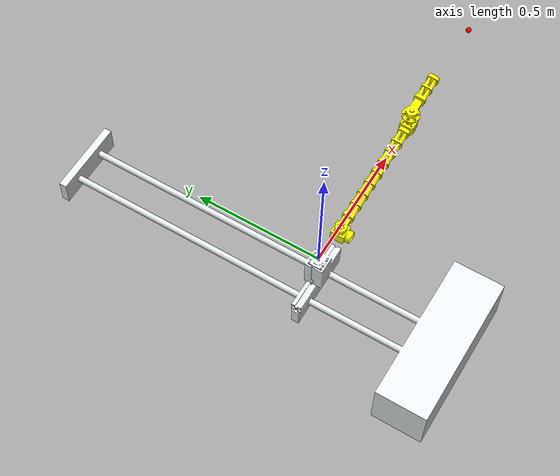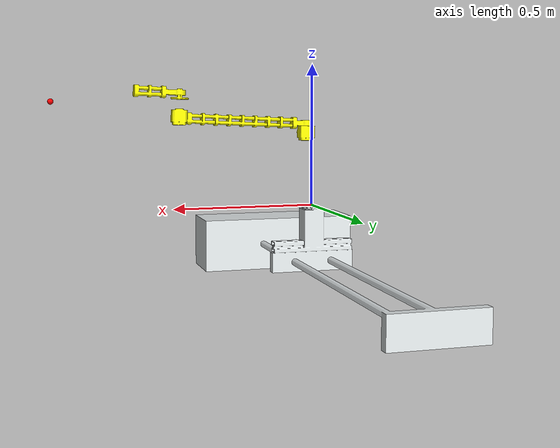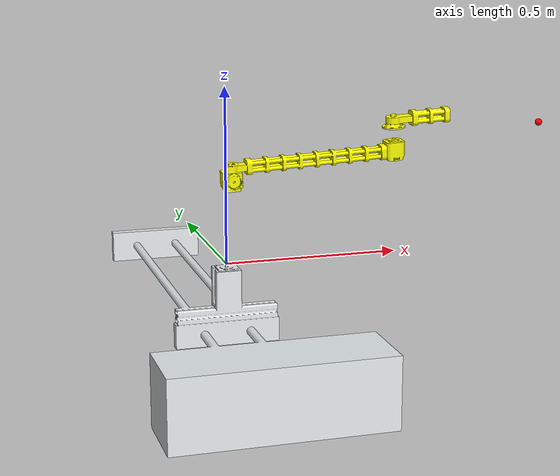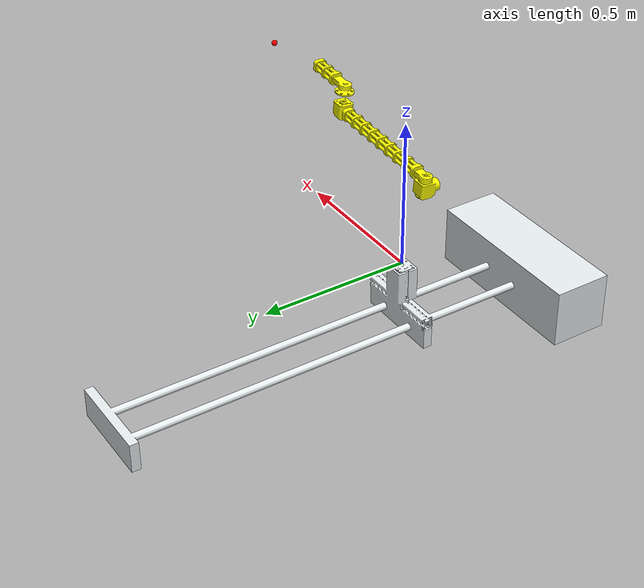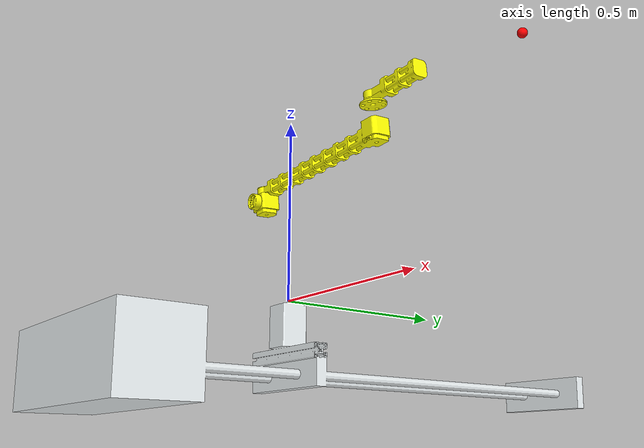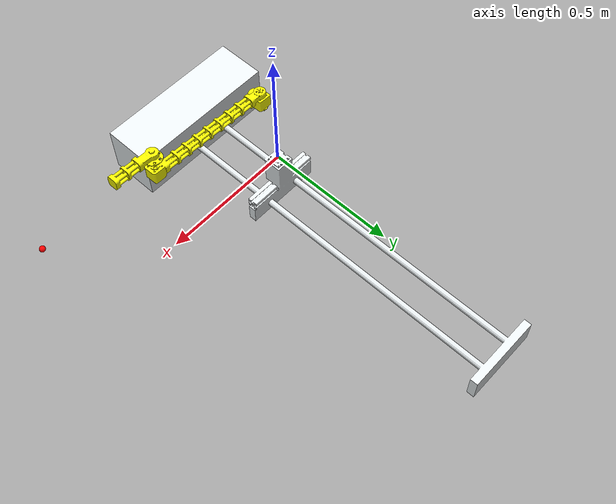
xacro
<?xml version="1.0"?>
<robot name="legrobot" xmlns:xacro="http://www.ros.org/wiki/xacro">

  <xacro:arg name="pkg_share" default=""/>
  <xacro:arg name="controllers_yaml" default=""/>
  <xacro:arg name="mesh_scale" default="1 1 1"/>

  <!-- ========= Args ========= -->
  <xacro:arg name="mesh_package" default="lesson_urdf"/>
  <xacro:arg name="fix_to_world" default="false"/>

  <!-- =========================
       LINKS + JOINTS
       ========================= -->

  <link name="base_link">
    <inertial>
      <origin xyz="-0.0025025 -0.17588 0.25152" rpy="0 0 0"/>
      <mass value="0.31319"/>
      <inertia
        ixx="0.0011307"  ixy="-1.0144E-05" ixz="5.0665E-05"
        iyy="0.0011316"  iyz="6.2853E-05"  izz="0.00011229"/>
    </inertial>

    <visual>
      <origin xyz="0 0 0" rpy="0 0 0"/>
      <geometry>
        <mesh filename="file://$(arg pkg_share)/meshes/base_link.STL" scale="$(arg mesh_scale)"/>
      </geometry>
      <material name="base_color">
        <color rgba="0.89804 0.92157 0.92941 1"/>
      </material>
    </visual>

    <collision>
      <origin xyz="0 0 0" rpy="0 0 0"/>
      <geometry>
        <mesh filename="file://$(arg pkg_share)/meshes/base_link.STL" scale="$(arg mesh_scale)"/>
      </geometry>
    </collision>
  </link>

  <link name="link_p">
    <inertial>
      <origin xyz="-0.000150427229849236 -0.00297528930070973 0.0208919297661822" rpy="0 0 0"/>
      <mass value="0.138380104137137"/>
      <inertia
        ixx="5.05247266315499E-05" ixy="6.91643752688145E-07" ixz="-5.29990486490267E-08"
        iyy="6.42572200451749E-05" iyz="-1.03863238761051E-06" izz="4.27301161244844E-05"/>
    </inertial>

    <visual>
      <origin xyz="0 0 0" rpy="0 0 0"/>
      <geometry>
        <mesh filename="file://$(arg pkg_share)/meshes/link_p.STL" scale="$(arg mesh_scale)"/>
      </geometry>
      <material name="yellow_p">
        <color rgba="1 1 0 1"/>
      </material>
    </visual>

    <collision>
      <origin xyz="0 0 0" rpy="0 0 0"/>
      <geometry>
        <mesh filename="file://$(arg pkg_share)/meshes/link_p.STL" scale="$(arg mesh_scale)"/>
      </geometry>
    </collision>
  </link>

  <joint name="joint_p" type="continuous">
    <origin xyz="-0.0024512 -0.097818 0.25643" rpy="1.5091 0 -3.1416"/>
    <parent link="base_link"/>
    <child link="link_p"/>
    <axis xyz="0 0 1"/>
  </joint>

  <link name="link_c">
    <inertial>
      <origin xyz="0.315330280840531 -2.34606143384025E-05 -0.010047091614373" rpy="0 0 0"/>
      <mass value="0.3089298949799"/>
      <inertia
        ixx="7.20297996548906E-05" ixy="-1.74839874712284E-09" ixz="-4.98731333977898E-06"
        iyy="0.000717249875302029" iyz="-1.3946552312525E-08" izz="0.00073083436101478"/>
    </inertial>

    <visual>
      <origin xyz="0 0 0" rpy="0 0 0"/>
      <geometry>
        <mesh filename="file://$(arg pkg_share)/meshes/link_c.STL" scale="$(arg mesh_scale)"/>
      </geometry>
      <material name="yellow_c">
        <color rgba="1 1 0 1"/>
      </material>
    </visual>

    <collision>
      <origin xyz="0 0 0" rpy="0 0 0"/>
      <geometry>
        <mesh filename="file://$(arg pkg_share)/meshes/link_c.STL" scale="$(arg mesh_scale)"/>
      </geometry>
    </collision>
  </link>

  <joint name="joint_c" type="continuous">
    <origin xyz="0.0021041 0.042122 0.02325" rpy="1.5708 0 3.0917"/>
    <parent link="link_p"/>
    <child link="link_c"/>
    <axis xyz="0 0 -1"/>
  </joint>

  <link name="link_r">
    <inertial>
      <origin xyz="0.212306297554012 1.94867171676716E-06 -0.011447592682255" rpy="0 0 0"/>
      <mass value="0.184300341408798"/>
      <inertia
        ixx="3.3203754311843E-05" ixy="-2.50204353742291E-09" ixz="-1.00150733282631E-10"
        iyy="0.000663634897908807" iyz="-2.39351302771645E-10" izz="0.000665757228078733"/>
    </inertial>

    <visual>
      <origin xyz="0 0 0" rpy="0 0 0"/>
      <geometry>
        <mesh filename="file://$(arg pkg_share)/meshes/link_r.STL" scale="$(arg mesh_scale)"/>
      </geometry>
      <material name="yellow_r">
        <color rgba="1 1 0 1"/>
      </material>
    </visual>

    <collision>
      <origin xyz="0 0 0" rpy="0 0 0"/>
      <geometry>
        <mesh filename="file://$(arg pkg_share)/meshes/link_r.STL" scale="$(arg mesh_scale)"/>
      </geometry>
    </collision>
  </link>

  <joint name="joint_r" type="continuous">
    <origin xyz="0.468 0 0.037775" rpy="0 0 0"/>
    <parent link="link_c"/>
    <child link="link_r"/>
    <axis xyz="0 0 -1"/>
  </joint>

  <!-- ===== FOOT / TIP EXACTO EN PUNTA DEL STL ===== -->
  <link name="foot_link">
    <visual>
      <origin xyz="0 0 0" rpy="0 0 0"/>
      <geometry>
        <sphere radius="0.01"/>
      </geometry>
      <material name="red">
        <color rgba="1 0 0 1"/>
      </material>
    </visual>

    <collision>
      <origin xyz="0 0 0" rpy="0 0 0"/>
      <geometry>
        <sphere radius="0.01"/>
      </geometry>
    </collision>
  </link>

  <joint name="joint_foot" type="fixed">
    <origin xyz="0.441000 0.0 -0.0117" rpy="0 0 0"/>
    <parent link="link_r"/>
    <child link="foot_link"/>
  </joint>

  <!-- =========================
       Gazebo Classic materials
       ========================= -->
  <gazebo reference="base_link"><material>Gazebo/Grey</material></gazebo>
  <gazebo reference="link_p"><material>Gazebo/Yellow</material></gazebo>
  <gazebo reference="link_c"><material>Gazebo/Yellow</material></gazebo>
  <gazebo reference="link_r"><material>Gazebo/Yellow</material></gazebo>
  <gazebo reference="foot_link"><material>Gazebo/Red</material></gazebo>

  <!-- Optional: fixed to world (debug) -->
  <!-- Optional: fixed to world (debug / keep stable in Gazebo) -->
  <xacro:if value="$(arg fix_to_world)">
    <link name="world"/>
    <joint name="world_joint" type="fixed">
      <parent link="world"/>
      <child link="base_link"/>
      <origin xyz="0 0 0" rpy="0 0 0"/>
    </joint>
  </xacro:if>

<!-- =========================
       ros2_control + Gazebo plugin
       ========================= -->

  <ros2_control name="GazeboSystem" type="system">
    <hardware>
      <plugin>gazebo_ros2_control/GazeboSystem</plugin>
    </hardware>

    <joint name="joint_p">
      <command_interface name="position"/>
      <state_interface name="position"/>
      <state_interface name="velocity"/>
    </joint>

    <joint name="joint_c">
      <command_interface name="position"/>
      <state_interface name="position"/>
      <state_interface name="velocity"/>
    </joint>

    <joint name="joint_r">
      <command_interface name="position"/>
      <state_interface name="position"/>
      <state_interface name="velocity"/>
    </joint>
  </ros2_control>

  <gazebo>
    <plugin name="gazebo_ros2_control" filename="libgazebo_ros2_control.so">
      <robotNamespace>/</robotNamespace>
      <parameters>$(arg controllers_yaml)</parameters>
    </plugin>
  </gazebo>

</robot>
